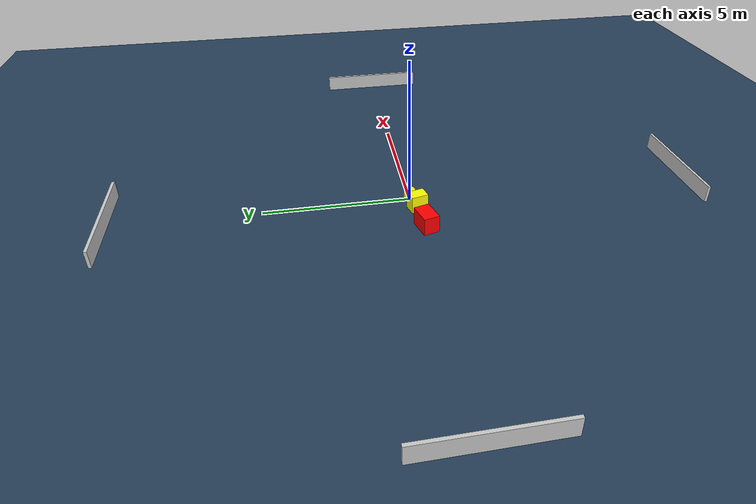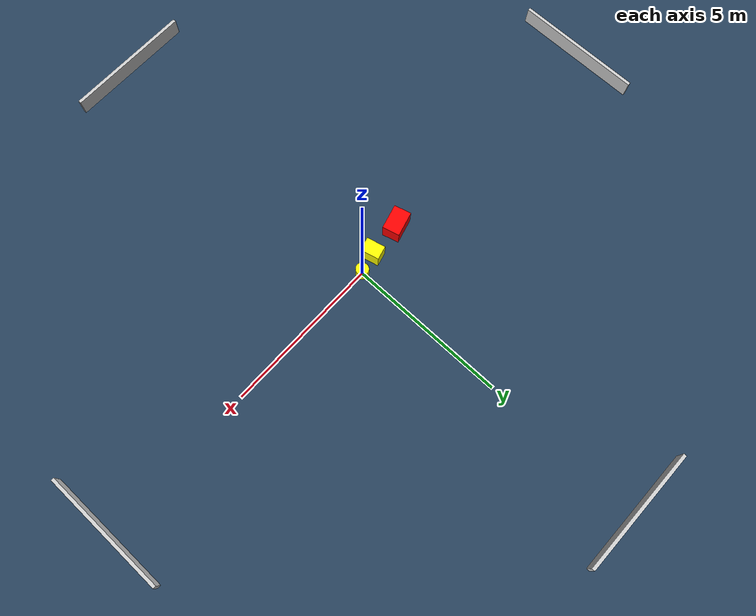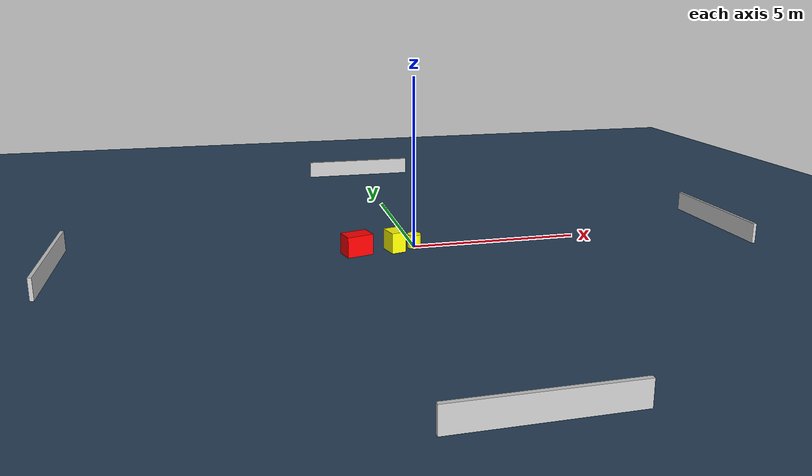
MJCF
<?xml version="1.0" ?>
<mujoco model="generated_environment">
  <option timestep="0.01" integrator="RK4" cone="elliptic"/>
  <default>
    <geom density="1"/>
  </default>
  <asset>
    <texture builtin="gradient" height="3072" name="skybox" rgb1="0.3 0.5 0.7" rgb2="0 0 0" type="skybox" width="512"/>
    <texture builtin="checker" height="300" name="groundplane" rgb1="0.2 0.3 0.4" rgb2="0.1 0.2 0.3" type="2d" width="300"/>
    <material name="groundplane" reflectance="0.2" texrepeat="5 5" texture="groundplane"/>
  </asset>
  <worldbody>
    <light dir="0 0 -1" directional="true" pos="0 0 1.5"/>
    <geom condim="3" friction="0.5 0.005 0.001" material="groundplane" name="floor" pos="0 0 0" size="0 0 0.05" type="plane"/>
    <body name="walls">
      <geom name="wall_1" condim="4" pos="-10.0 0.0 0.3" rgba="0.800000011920929 0.800000011920929 0.800000011920929 1.0" size="0.05 2.0 0.3" type="box"/>
      <geom name="wall_2" condim="4" pos="10.0 0.0 0.3" rgba="0.800000011920929 0.800000011920929 0.800000011920929 1.0" size="0.05 2.0 0.3" type="box"/>
      <geom name="wall_3" condim="4" pos="0.0 -10.0 0.3" rgba="0.800000011920929 0.800000011920929 0.800000011920929 1.0" size="2.0 0.05 0.3" type="box"/>
      <geom name="wall_4" condim="4" pos="0.0 10.0 0.3" rgba="0.800000011920929 0.800000011920929 0.800000011920929 1.0" size="2.0 0.05 0.3" type="box"/>
    </body>
    <body name="robot">
      <joint name="joint_x" type="slide" pos="0 0 0" axis="1 0 0"/>
      <joint name="joint_y" type="slide" pos="0 0 0" axis="0 1 0"/>
      <geom name="robot" type="cylinder" pos="0.0 0.0 0.2" size="0.2 0.2 0.0" mass="5.0" friction="1.0 0.005 0.0001" condim="4" rgba="1.0 1.0 0.0 1.0"/>
    </body>
    <body name="obstacle_1_movable">
      <geom name="obstacle_1_movable" condim="4" pos="-0.6215490466163629 -0.16155898703230503 0.3" euler="0 0 14.41652178028242" friction="0.0 0.005 0.001" rgba="1.0 1.0 0.0 1.0" size="0.2162762828491922 0.2948354833743535 0.3" type="box" mass="0.1"/>
      <joint type="free"/>
    </body>
    <body name="obstacle_2_static">
      <geom name="obstacle_2_static" condim="4" pos="-1.7440860594618683 -0.23706170634051352 0.3" euler="0 0 105.29380314350213" friction="0.0 0.005 0.001" rgba="1.0 0.0 0.0 1.0" size="0.2682580786146821 0.39143746553853875 0.3" type="box"/>
    </body>
  </worldbody>
  <actuator>
    <motor name="actuator_x" joint="joint_x" gear="1" ctrlrange="-1 1"/>
    <motor name="actuator_y" joint="joint_y" gear="1" ctrlrange="-1 1"/>
  </actuator>
</mujoco>
